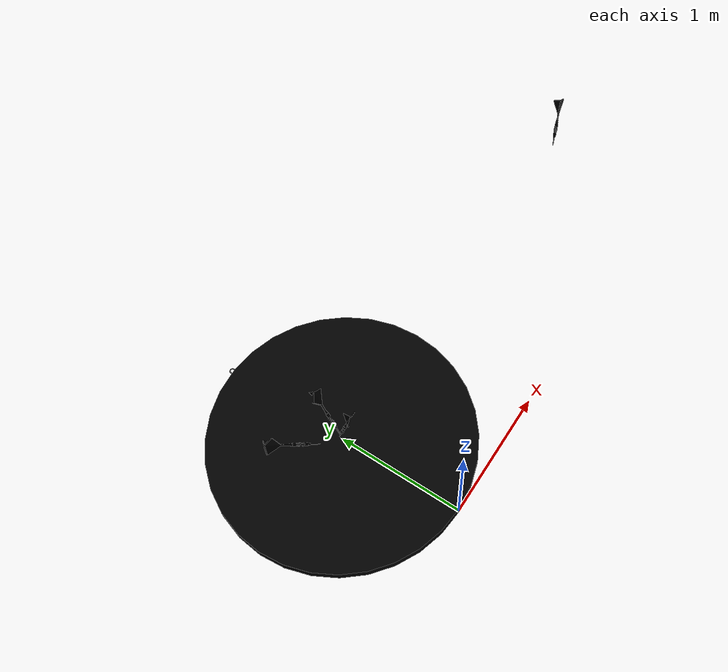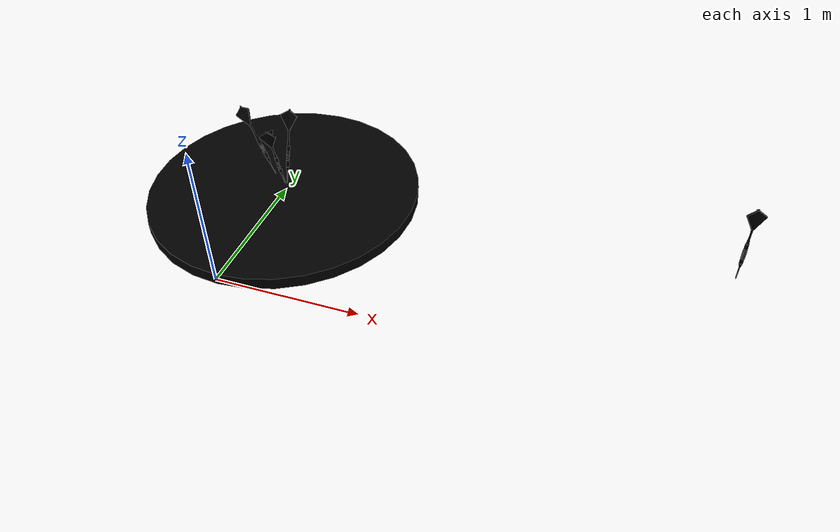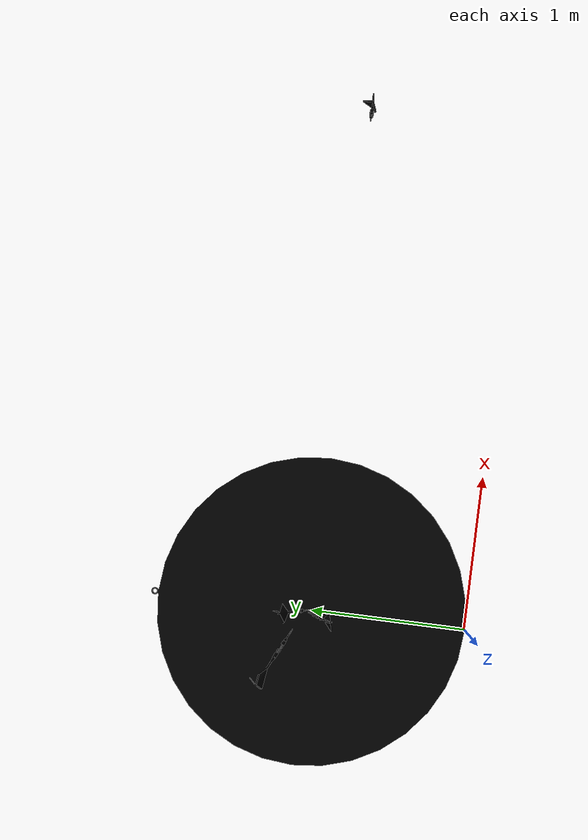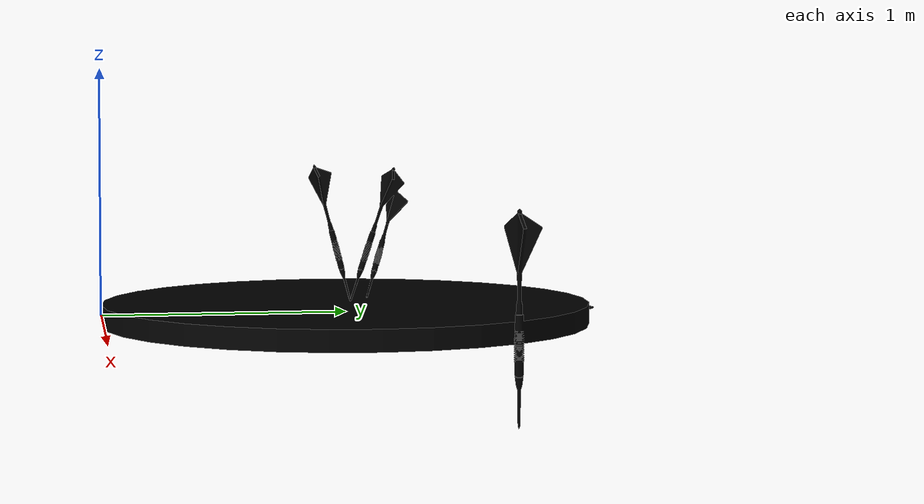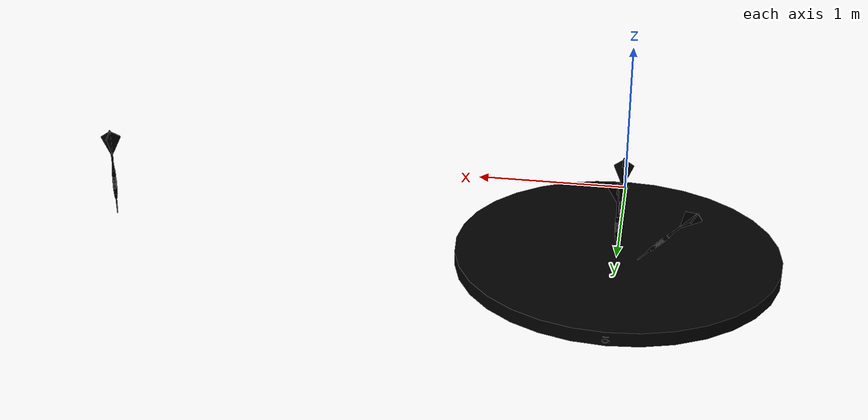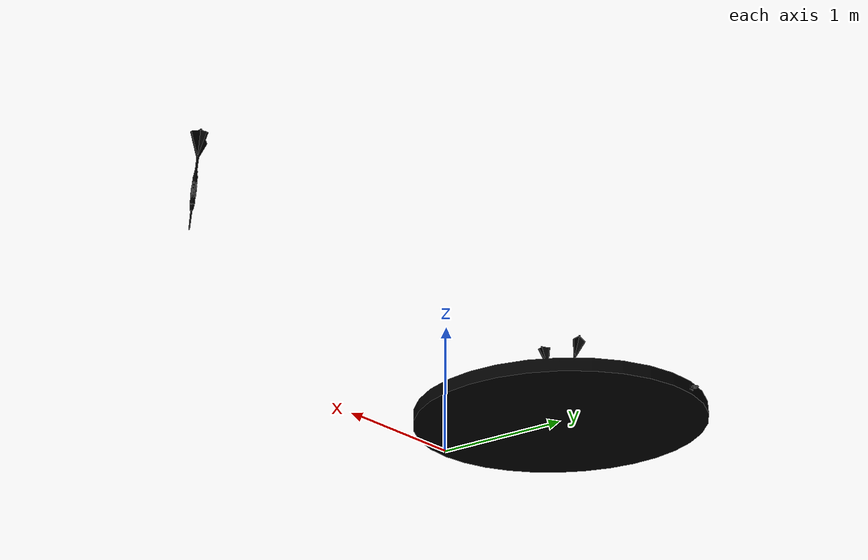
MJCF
<mujoco model="dartboard_model">
    <asset>
        <!-- Dartboard's visual representation from .obj file -->
        <mesh file="../../dart/assets/dart_board1.obj" name="dartboard_mesh"/>
    </asset>

    <worldbody>
        <!-- Dartboard body -->
        <body name="dartboard" pos="0 1 0"> <!-- Positioned 1 unit along the z-axis as an example -->
            <geom type="mesh" mesh="dartboard_mesh" rgba="-1 -1 -1 1" contype="0" conaffinity="1"/> <!-- Assuming white color for simplicity -->
        </body>
    </worldbody>
</mujoco>
